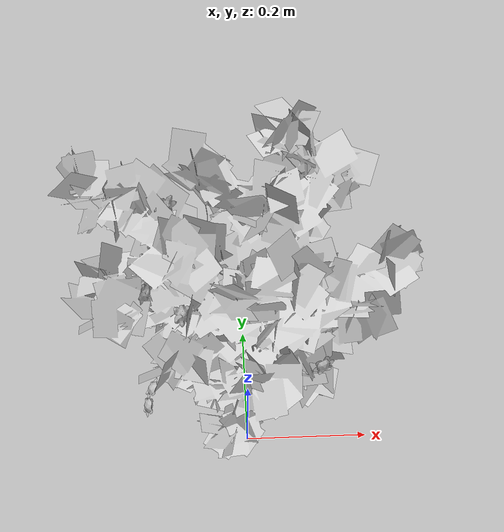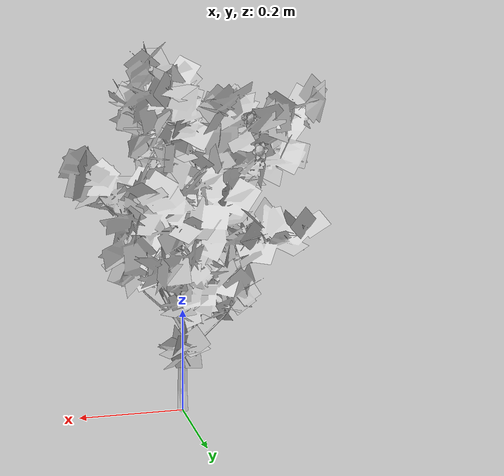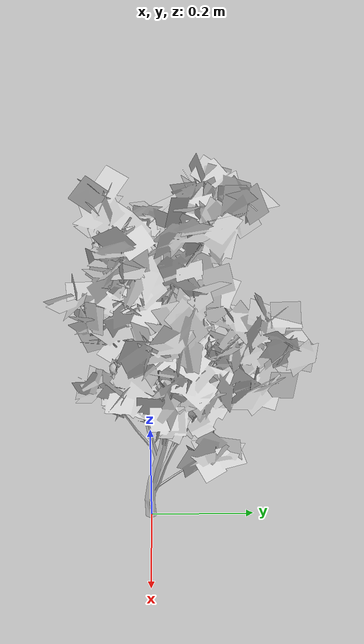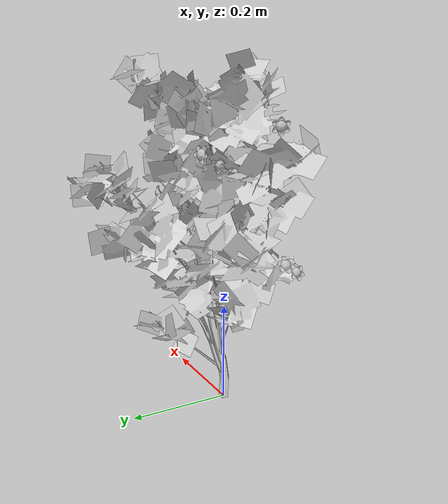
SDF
<?xml version="1.0" ?>
<sdf version="1.6">
  <model name="tree-flowers">
    <!--Skew-Seed:3120632194-->
    <static>true</static>
    <link name="link"/>
    <include>
      <uri>model://tree-mesh</uri>
      <pose>0 0 0 0 0 0</pose>
    </include>
    <joint name="tree_joint" type="fixed">
      <child>tree-mesh::link</child>
      <parent>link</parent>
    </joint>
    <include>
      <name>bramble_0</name>
      <uri>model://bramble</uri>
      <pose> -0.11575411920816774 0.10947764392204148 0.5261696528578244 -1.933837882402274 2.053756660742114 0.0</pose>
    </include>
    <joint name="flower_joint_0" type="fixed">
      <child>bramble_0::flower_link</child>
      <parent>link</parent>
    </joint>
    <include>
      <name>bramble_1</name>
      <uri>model://bramble</uri>
      <pose> -0.1290116734846932 -0.036442987593210185 0.5687334882495654 -2.688734263413375 1.4731570611808793 0.0</pose>
    </include>
    <joint name="flower_joint_1" type="fixed">
      <child>bramble_1::flower_link</child>
      <parent>link</parent>
    </joint>
    <include>
      <name>bramble_2</name>
      <uri>model://bramble</uri>
      <pose> 0.05302422281431442 0.07378404304522197 0.4736720467854661 -1.4912184943327786 1.2622713038247433 0.0</pose>
    </include>
    <joint name="flower_joint_2" type="fixed">
      <child>bramble_2::flower_link</child>
      <parent>link</parent>
    </joint>
    <include>
      <name>bramble_3</name>
      <uri>model://bramble</uri>
      <pose> -0.05161763680811868 0.07836170948167467 0.34586451652511097 -2.682728672765202 2.043837731149627 0.0</pose>
    </include>
    <joint name="flower_joint_3" type="fixed">
      <child>bramble_3::flower_link</child>
      <parent>link</parent>
    </joint>
    <include>
      <name>bramble_4</name>
      <uri>model://bramble</uri>
      <pose> -0.0906981450610463 0.06157326874913359 0.33498026316512514 -2.2934119720692756 1.7206746272914941 0.0</pose>
    </include>
    <joint name="flower_joint_4" type="fixed">
      <child>bramble_4::flower_link</child>
      <parent>link</parent>
    </joint>
    <include>
      <name>bramble_5</name>
      <uri>model://bramble</uri>
      <pose> -0.1425721459181745 -0.06943036872153215 0.302332897503302 -3.2727452947883107 2.0382985360013386 0.0</pose>
    </include>
    <joint name="flower_joint_5" type="fixed">
      <child>bramble_5::flower_link</child>
      <parent>link</parent>
    </joint>
    <include>
      <name>bramble_6</name>
      <uri>model://bramble</uri>
      <pose> 0.07001170104615745 -0.07290586724374351 0.5864408950510868 1.0607696520741763 1.2530834857870057 0.0</pose>
    </include>
    <joint name="flower_joint_6" type="fixed">
      <child>bramble_6::flower_link</child>
      <parent>link</parent>
    </joint>
    <include>
      <name>bramble_7</name>
      <uri>model://bramble</uri>
      <pose> -0.12039195010875221 0.07904320483234381 0.5092097707891678 -2.6863155187403325 1.0076240141722725 0.0</pose>
    </include>
    <joint name="flower_joint_7" type="fixed">
      <child>bramble_7::flower_link</child>
      <parent>link</parent>
    </joint>
    <include>
      <name>bramble_8</name>
      <uri>model://bramble</uri>
      <pose> -0.10361905895924187 0.08349777814545326 0.5814518615084852 -2.2515949786765774 1.1580300048915144 0.0</pose>
    </include>
    <joint name="flower_joint_8" type="fixed">
      <child>bramble_8::flower_link</child>
      <parent>link</parent>
    </joint>
    <include>
      <name>bramble_9</name>
      <uri>model://bramble</uri>
      <pose> -0.13368725472134907 0.05483843561181819 0.4965458371897695 -2.84325750590764 1.1824508704502499 0.0</pose>
    </include>
    <joint name="flower_joint_9" type="fixed">
      <child>bramble_9::flower_link</child>
      <parent>link</parent>
    </joint>
    <include>
      <name>bramble_10</name>
      <uri>model://bramble</uri>
      <pose> 0.06761611684906202 -0.04724108948520353 0.3111306401050844 0.5326141514682022 2.217327015279403 0.0</pose>
    </include>
    <joint name="flower_joint_10" type="fixed">
      <child>bramble_10::flower_link</child>
      <parent>link</parent>
    </joint>
    <include>
      <name>bramble_11</name>
      <uri>model://bramble</uri>
      <pose> 0.09986759725246536 -0.052650657790289 0.3876877400189631 1.0915255794141032 0.9512597111568217 0.0</pose>
    </include>
    <joint name="flower_joint_11" type="fixed">
      <child>bramble_11::flower_link</child>
      <parent>link</parent>
    </joint>
    <include>
      <name>bramble_12</name>
      <uri>model://bramble</uri>
      <pose> -0.12926091689833957 0.08266097341862275 0.38740179230667793 -2.6350814993065645 2.2606363942177103 0.0</pose>
    </include>
    <joint name="flower_joint_12" type="fixed">
      <child>bramble_12::flower_link</child>
      <parent>link</parent>
    </joint>
    <include>
      <name>bramble_13</name>
      <uri>model://bramble</uri>
      <pose> 0.09493010090485404 0.09521883359168952 0.42543309950072783 -1.4143094644467171 1.259573045436884 0.0</pose>
    </include>
    <joint name="flower_joint_13" type="fixed">
      <child>bramble_13::flower_link</child>
      <parent>link</parent>
    </joint>
    <include>
      <name>bramble_14</name>
      <uri>model://bramble</uri>
      <pose> -0.132817901880649 0.06716359878258482 0.3886868519248967 -3.2697673352876366 1.949601864071492 0.0</pose>
    </include>
    <joint name="flower_joint_14" type="fixed">
      <child>bramble_14::flower_link</child>
      <parent>link</parent>
    </joint>
    <include>
      <name>bramble_15</name>
      <uri>model://bramble</uri>
      <pose> -0.08572793158186702 -0.03413074356609998 0.507864949187097 -2.80834678267723 0.9451408181827966 0.0</pose>
    </include>
    <joint name="flower_joint_15" type="fixed">
      <child>bramble_15::flower_link</child>
      <parent>link</parent>
    </joint>
    <include>
      <name>bramble_16</name>
      <uri>model://bramble</uri>
      <pose> -0.13625595247501127 -0.05062842349800224 0.31692810189004295 -2.9454130856001717 2.1960804033249146 0.0</pose>
    </include>
    <joint name="flower_joint_16" type="fixed">
      <child>bramble_16::flower_link</child>
      <parent>link</parent>
    </joint>
  </model>
</sdf>

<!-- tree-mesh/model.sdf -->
<sdf version="1.6">
  <model name="tree-mesh">
    <static>true</static>
    <link name="link">

      <collision name="collision">
        <geometry>
          <mesh>
            <uri>model://tree-mesh/meshes/new_tree.dae</uri>
            <scale>0.0625 0.0625 0.0625</scale>
          </mesh>
        </geometry>
      </collision>

      <!-- simplified collision for sake of speed since leaves shouldn't be blocking anyway -->

      <visual name="leaves">
        <geometry>
          <mesh>
            <uri>model://tree-mesh/meshes/leaves.dae</uri>
            <scale>0.0325 0.0325 0.0325</scale>
          </mesh>
        </geometry>
        <material>
          <script>
            <uri>model://tree-mesh/materials/scripts/</uri>
            <uri>model://tree-mesh/materials/textures/</uri>
            <name>NewTree/Branch</name>
          </script>
        </material>
      </visual>
      <visual name="bark">
        <geometry>
          <mesh>
            <uri>model://tree-mesh/meshes/bark.dae</uri>
            <scale>0.0325 0.0325 0.0325</scale>
          </mesh>
        </geometry>
        <material>
          <script>
            <uri>model://tree-mesh/materials/scripts/</uri>
            <uri>model://tree-mesh/materials/textures/</uri>
            <name>NewTree/Bark</name>
          </script>
        </material>
      </visual>
    </link>
  </model>
</sdf>

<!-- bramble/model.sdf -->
<sdf version="1.6">
  <model name="bramble">
    <static>true</static>
    <link name="flower_link">
      <collision name="body_collision">
        <geometry>
          <mesh>
            <uri>model://bramble/meshes/bramble.dae</uri>
            <scale>0.2 0.2 0.2</scale>
          </mesh>
        </geometry>
      </collision>
      <visual name="petals">
        <geometry>
          <mesh>
            <uri>model://bramble/meshes/bramble.dae</uri>
            <scale>0.2 0.2 0.2</scale>
            <submesh>
              <name>petal</name>
            </submesh>
          </mesh>
        </geometry>
        <material>
          <script>
            <uri>model://bramble/materials/scripts/</uri>
            <uri>model://bramble/materials/textures/</uri>
            <name>Bramble/Petal</name>
          </script>
        </material>
      </visual>
      <visual name="carpel">
        <geometry>
          <mesh>
            <uri>model://bramble/meshes/bramble.dae</uri>
            <scale>0.2 0.2 0.2</scale>
            <submesh>
              <name>carpel</name>
            </submesh>
          </mesh>
        </geometry>
        <material>
          <script>
            <uri>model://bramble/materials/scripts/</uri>
            <uri>model://bramble/materials/textures/</uri>
            <name>Bramble/Carpel</name>
          </script>
        </material>
      </visual>
      <visual name="stamen">
        <geometry>
          <mesh>
            <uri>model://bramble/meshes/bramble.dae</uri>
            <scale>0.2 0.2 0.2</scale>
            <submesh>
              <name>stamen</name>
            </submesh>
          </mesh>
        </geometry>
        <material>
          <script>
            <uri>model://bramble/materials/scripts/</uri>
            <uri>model://bramble/materials/textures/</uri>
            <name>Bramble/Stamen</name>
          </script>
        </material>
      </visual>
    </link>
  </model>
</sdf>
